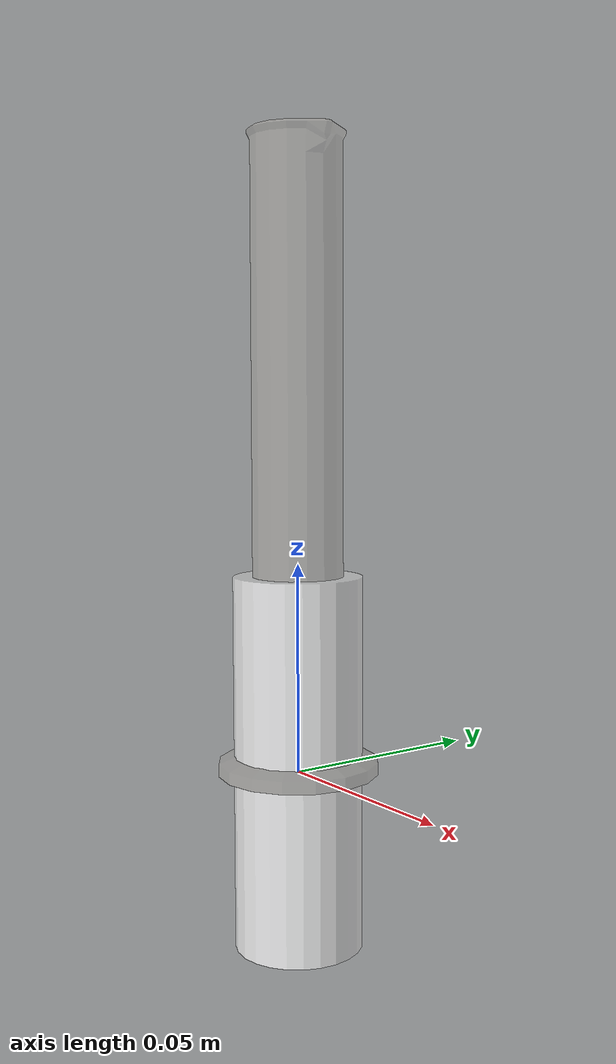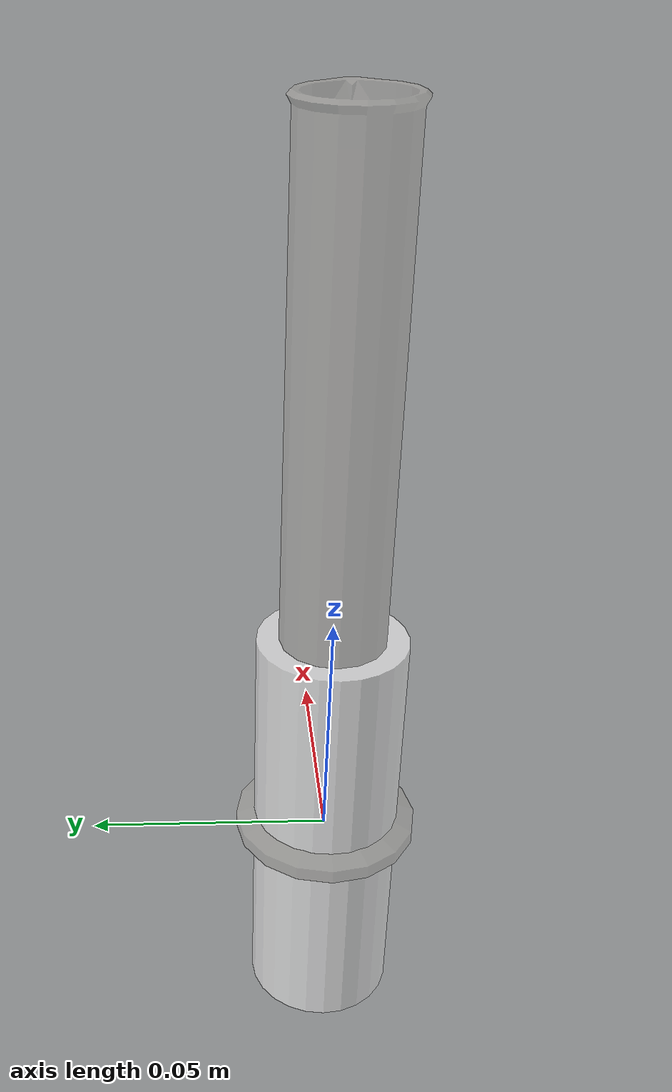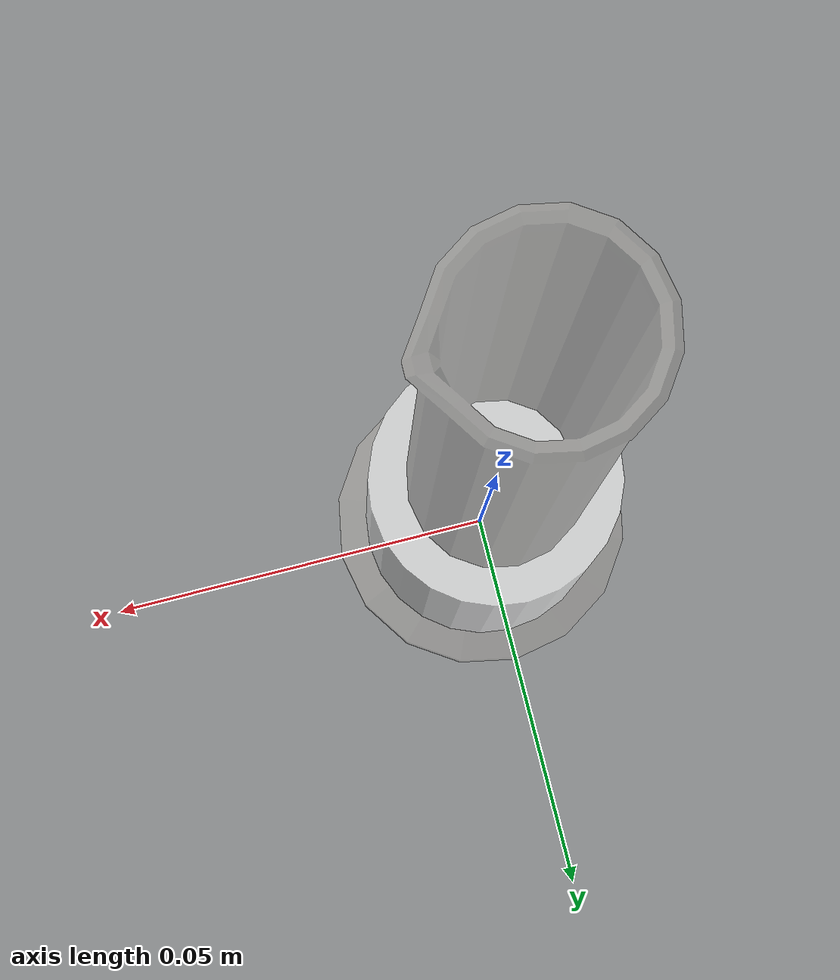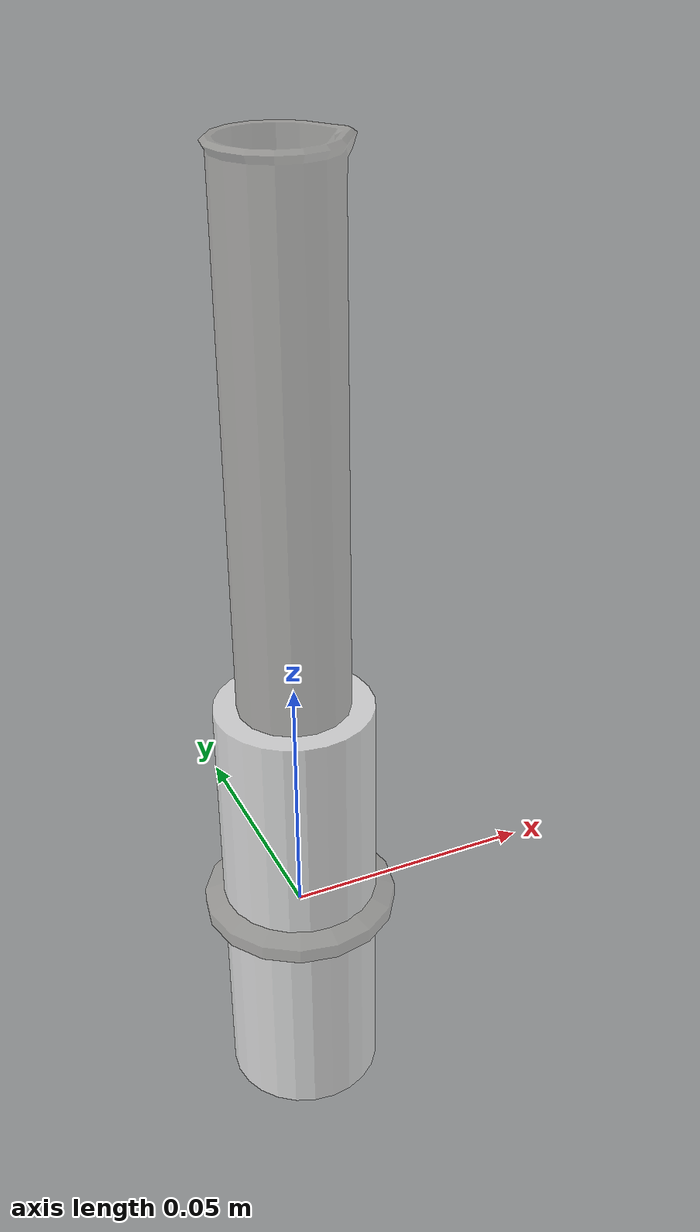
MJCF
<?xml version="1.0" ?>
<mujoco model="cylinder_big">
  <asset>
    <texture type="2d" name="lab_cylinder_a" file="lab_cylinder_a.png"/>
    <material name="lab_cylinder_a" texture="lab_cylinder_a" specular="0.4000000000000001" shininess="0.001" rgba="1 1 1 0.3"/>
    <mesh file="cylinder_big.obj" scale="0.007271084677411311 0.007271084677411311 0.007271084677411311"/>
    <mesh file="cylinder_big/cylinder_big_collision_0.obj" scale="0.007271084677411311 0.007271084677411311 0.007271084677411311"/>
    <mesh file="cylinder_big/cylinder_big_collision_1.obj" scale="0.007271084677411311 0.007271084677411311 0.007271084677411311"/>
    <mesh file="cylinder_big/cylinder_big_collision_2.obj" scale="0.007271084677411311 0.007271084677411311 0.007271084677411311"/>
    <mesh file="cylinder_big/cylinder_big_collision_3.obj" scale="0.007271084677411311 0.007271084677411311 0.007271084677411311"/>
    <mesh file="cylinder_big/cylinder_big_collision_4.obj" scale="0.007271084677411311 0.007271084677411311 0.007271084677411311"/>
    <mesh file="cylinder_big/cylinder_big_collision_5.obj" scale="0.007271084677411311 0.007271084677411311 0.007271084677411311"/>
    <mesh file="cylinder_big/cylinder_big_collision_6.obj" scale="0.007271084677411311 0.007271084677411311 0.007271084677411311"/>
    <mesh file="cylinder_big/cylinder_big_collision_7.obj" scale="0.007271084677411311 0.007271084677411311 0.007271084677411311"/>
    <mesh file="cylinder_big/cylinder_big_collision_8.obj" scale="0.007271084677411311 0.007271084677411311 0.007271084677411311"/>
      <material name="CaSO4" rgba="1 1 1 0.7"/>
    <material name="CuCl2" rgba="0.141 1.0 0.174 0.4"/>
    <material name="CuSO4" rgba="0 0.45 1 0.4"/>
    <material name="FeCl3" rgba="0.6475 0.5686 0.023 0.4"/>
    <material name="KMnO4" rgba="0.5 0 0.5 0.4"/>
    <material name="I2" rgba="0.3 0.13 0.0 0.4"/>
    <material name="K2CrO4" rgba="0.57 0.12 0.013 0.4"/>
    <material name="NaCl" rgba="1 1 1 0.3"/>
</asset>
  <worldbody>
    <body name="cylinder_big">
      <inertial pos="0 0 0.075000" mass="0.02" diaginertia="0.0008 0.0008 0.0005"/>
      <geom material="lab_cylinder_a" mesh="cylinder_big" class="visual"/>
      <geom mesh="cylinder_big_collision_0"  class="collision"/>
      <geom mesh="cylinder_big_collision_1"  class="collision"/>
      <geom mesh="cylinder_big_collision_2"  class="collision"/>
      <geom mesh="cylinder_big_collision_3"  class="collision"/>
      <geom mesh="cylinder_big_collision_4"  class="collision"/>
      <geom mesh="cylinder_big_collision_5"  class="collision"/>
      <geom mesh="cylinder_big_collision_6"  class="collision"/>
      <geom mesh="cylinder_big_collision_7"  class="collision"/>
      <geom mesh="cylinder_big_collision_8"  class="collision"/>
      <site class="grasppoint" pos="0.0000 0.0000 0.0900"/>
      <site class="grasppoint" pos="0.0000 0.0000 0.1200"/>
      <site class="grasppoint" pos="0.0000 0.0000 0.1425"/>
          <geom name="solution" type="cylinder" size="0.015394 0.044999" pos="0 0 0.002289" material="CaSO4" class="visual"/>
      <site name="top_site" pos="0 0 20.629659" size="0.01" rgba="1 0 0 0"/>
      <site name="bottom_site" pos="0 0 0.000000" size="0.01" rgba="0 1 0 0"/>
</body>
  </worldbody>
  <compiler boundmass="0.015" boundinertia="1e-05" angle="radian"/>
  <default>
    <default class="visual">
      <geom group="2" type="mesh" contype="0" conaffinity="0" density="50"/>
    </default>
    <default class="collision">
      <geom group="3" type="mesh" density="50" friction="1 1 0.001" solimp="0.998 0.998 0.001" solref="0.001 2"/>
    </default>
    <default class="grasppoint">
      <site type="sphere" size="0.005" group="4" rgba="0 0 1 1"/>
    </default>
  </default>
</mujoco>
